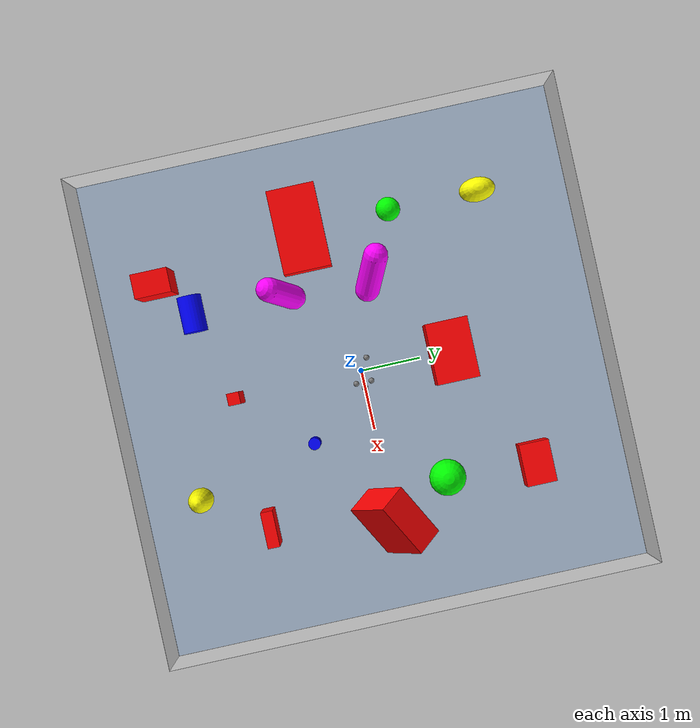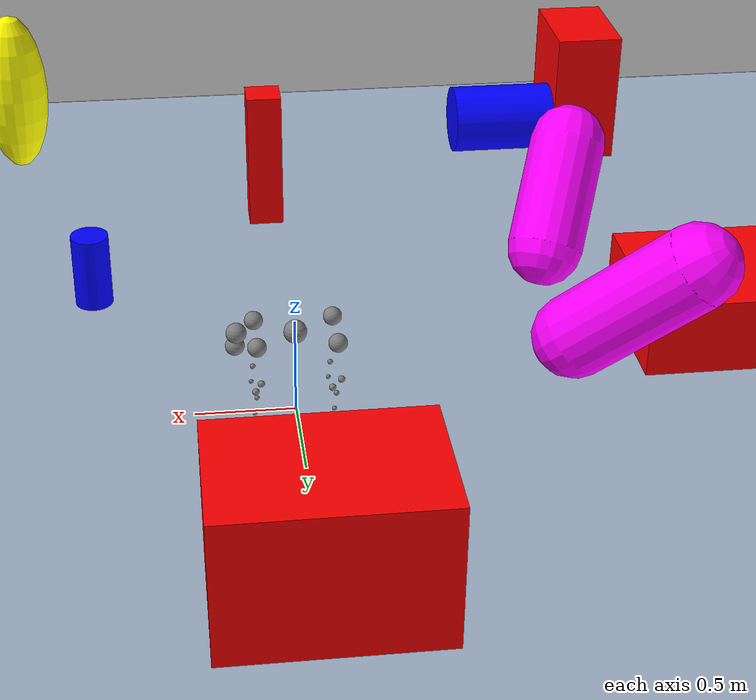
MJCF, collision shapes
<mujoco model="go2 feetonly flat terrain scene">
  <include file="unitree_go2/go2_mjx.xml"/>
  <statistic center="0 0 0.1" extent="0.8" meansize="0.04"/>

  <visual>
    <headlight diffuse="0.6 0.6 0.6" ambient="0.3 0.3 0.3" specular="0 0 0"/>
    <rgba haze="0.15 0.25 0.35 1"/>
    <global azimuth="120" elevation="-20"/>
    <map force="0.01"/>
    <scale forcewidth="0.3" contactwidth="0.5" contactheight="0.2"/>
    <quality shadowsize="8192"/>
  </visual>

  <asset>
    <texture type="skybox" builtin="gradient" rgb1="0.4314 0.5294 0.6431" rgb2="0 0 0" width="512" height="512"/>
    <texture type="2d" name="groundplane" builtin="checker" mark="edge" rgb1="0.4314 0.5294 0.6431" rgb2="0.8157 0.8549 0.9059"
      markrgb="0.8 0.8 0.8" width="300" height="300"/>
    <material name="groundplane" texture="groundplane" texuniform="true" texrepeat="1 1" reflectance="0.2"/>
  </asset>

  <worldbody>
      <light pos="0 0 1.5" dir="0 0 -1" directional="true"/>
      <geom name="floor" size="4 4 0.01" type="plane" material="groundplane" contype="1" conaffinity="0" priority="1" friction="0.6" condim="3"/>
      <geom name="wall1" type="box" size="1e-3 4 0.5" pos=" 4 0 0.5" rgba="0.9 0.9 0.9 1"/>
      <geom name="wall2" type="box" size="1e-3 4 0.5" pos="-4 0 0.5" rgba="0.9 0.9 0.9 1"/>
      <geom name="wall3" type="box" size="4 1e-3 0.5" pos="0  4 0.5" rgba="0.9 0.9 0.9 1"/>
      <geom name="wall4" type="box" size="4 1e-3 0.5" pos="0 -4 0.5" rgba="0.9 0.9 0.9 1"/>

      <!-- 盒子 -->
      <geom name="box1" type="box" size="0.25 0.5 0.5" pos="2.5 0 0.5" euler="45 -45 0" rgba="1 0 0 1"/>
      <geom name="box2" type="box" size="0.7 0.4 0.2" pos="-2.5 -0.5 0.2" rgba="1 0 0 1"/>
      <geom name="box3" type="box" size="0.3 0.1 0.3" pos="2.2 -2 0.3" rgba="1 0 0 1"/>
      <geom name="box4" type="box" size="0.1 0.1 0.4" pos="0 -2.1 0.4" rgba="1 0 0 1"/>
      <geom name="box5" type="box" size="0.2 0.3 0.4" pos="-2.1 -3 0.4" rgba="1 0 0 1"/>
      <geom name="box6" type="box" size="0.35 0.25 0.2" pos="2.1 2.5 0.2" rgba="1 0 0 1"/>
      <geom name="box7" type="box" size="0.5 0.35 0.35" pos="0 1.5 0.4" rgba="1 0 0 1"/>

      <!-- 球体 -->
      <geom name="sphere1" type="sphere" size="0.3" pos="2 1 0.5" rgba="0 1 0 1"/>
      <geom name="sphere2" type="sphere" size="0.2" pos="-2.5 1 0.3" rgba="0 1 0 1"/>

      <!-- 圆柱体 -->
      <geom name="cylinder1" type="cylinder" size="0.2 0.3" pos="-1.5 -2.5 0.4" quat="1 0 1 0" rgba="0 0 1 1"/>
      <geom name="cylinder2" type="cylinder" size="0.1 0.2" pos="1 -1 0.3" rgba="0 0 1 1"/>

      <!-- 椭球体 -->
      <geom name="ellipsoid1" type="ellipsoid" size="0.2 0.2 0.5" pos="1.5 -3 0.5" rgba="1 1 0 1"/>
      <geom name="ellipsoid2" type="ellipsoid" size="0.2 0.3 0.3" pos="-2.5 2.5 0.3" rgba="1 1 0 1"/>

      <!-- 胶囊体 -->
      <geom name="capsule1" type="capsule" size="0.2 0.35" pos="-1.5 0.5 0.8" quat="1 3 1 1" rgba="1 0 1 1"/>
      <geom name="capsule2" type="capsule" size="0.2 0.3" pos="-1.5 -1 0.6" quat="0.1 0 0.6 0.2" rgba="1 0 1 1"/>

  </worldbody>

  <keyframe>
    <key name="home"
      qpos="
      0 0 0.278
      1 0 0 0
      0.1 0.9 -1.8
      -0.1 0.9 -1.8
      0.1 0.9 -1.8
      -0.1 0.9 -1.8"
      ctrl="0.1 0.9 -1.8 -0.1 0.9 -1.8 0.1 0.9 -1.8 -0.1 0.9 -1.8"/>
  </keyframe>

</mujoco>

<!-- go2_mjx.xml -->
<mujoco model="go2">
  <compiler angle="radian" autolimits="true"/>

  <option iterations="1" ls_iterations="5" timestep="0.004" integrator="Euler">
    <flag eulerdamp="disable"/>
  </option>

  <custom>
    <numeric data="30" name="max_contact_points"/>
    <numeric data="12" name="max_geom_pairs"/>
  </custom>

  <default>
    <default class="go2">
      <geom condim="1"/>
      <joint axis="0 1 0" damping="2" armature="0.01"/>
      <general forcerange="-24 24" biastype="affine" gainprm="50 0 0" biasprm="0 -50 -0.5"/>

      <default class="abduction">
        <joint axis="1 0 0" range="-1.0472 1.0472"/>
        <general ctrlrange="-0.9472 0.9472"/>
      </default>
      <default class="hip">
        <joint range="-1.5708 3.4907"/>
        <general ctrlrange="-1.4 2.5"/>
      </default>
      <default class="knee">
        <joint range="-2.7227 -0.83776"/>
        <general ctrlrange="-2.6227 -0.84776"/>
      </default>
      <default class="visual">
        <geom type="mesh" contype="0" conaffinity="0" group="0"/>
      </default>
      <default class="go2foot">
        <site pos="0 0 -0.213" type="sphere" size="0.023" group="5"/>
        <geom rgba="0.231373 0.380392 0.705882 1"/>
      </default>
      <default class="collision">
        <geom group="3"/>
        <default class="foot">
          <geom type="sphere" size="0.0175" pos="-0.002 0 -0.213" solimp="0.9 .95 0.023" condim="3"/>
        </default>
      </default>
    </default>
  </default>

  <asset>
    <material name="metal" rgba=".9 .95 .95 1"/>
    <material name="black" rgba="0 0 0 1"/>
    <material name="white" rgba="1 1 1 1"/>
    <material name="gray" rgba="0.671705 0.692426 0.774270 1"/>

    <mesh file="assets/base_0.obj"/>
    <mesh file="assets/base_1.obj"/>
    <mesh file="assets/base_2.obj"/>
    <mesh file="assets/base_3.obj"/>
    <mesh file="assets/base_4.obj"/>
    <mesh file="assets/hip_0.obj"/>
    <mesh file="assets/hip_1.obj"/>
    <mesh file="assets/thigh_0.obj"/>
    <mesh file="assets/thigh_1.obj"/>
    <mesh file="assets/thigh_mirror_0.obj"/>
    <mesh file="assets/thigh_mirror_1.obj"/>
    <mesh file="assets/calf_0.obj"/>
    <mesh file="assets/calf_1.obj"/>
    <mesh file="assets/calf_mirror_0.obj"/>
    <mesh file="assets/calf_mirror_1.obj"/>
    <mesh file="assets/foot.obj"/>
  </asset>

  <worldbody>
    <body name="base" pos="0 0 0.445" childclass="go2">
      <camera name="track" pos="0.846 -1.465 0.916" xyaxes="0.866 0.500 0.000 -0.171 0.296 0.940" mode="trackcom"/>
      <camera name="head_camera" pos="0.32 0 0.04" xyaxes="0 -1 0 0 0 1"/>
      <inertial pos="0.021112 0 -0.005366" quat="-0.000543471 0.713435 -0.00173769 0.700719" mass="6.921"
        diaginertia="0.107027 0.0980771 0.0244531"/>
      <freejoint/>
      <geom mesh="base_0" material="black" class="visual"/>
      <geom mesh="base_1" material="black" class="visual"/>
      <geom mesh="base_2" material="black" class="visual"/>
      <geom mesh="base_3" material="white" class="visual"/>
      <geom mesh="base_4" material="gray" class="visual"/>
      <geom size="0.057 0.04675 0.057" class="collision"/>
      <geom size="0.05 0.045" pos="0.285 0 0.01" class="collision"/>
      <geom size="0.047" pos="0.293 0 -0.06" class="collision"/>
      <site name="imu" pos="-0.02557 0 0.04232"/>
      <site name="lidar" pos="0.295 0 -0.075" quat="0.05 0 1 0" rgba="1 0 0 1" size="0.005" group="5"/>
      <body name="FL_hip" pos="0.1934 0.0465 0">
        <inertial pos="-0.0054 0.00194 -0.000105" quat="0.497014 0.499245 0.505462 0.498237" mass="0.678"
          diaginertia="0.00088403 0.000596003 0.000479967"/>
        <joint name="FL_hip_joint" class="abduction"/>
        <geom mesh="hip_0" material="metal" class="visual"/>
        <geom mesh="hip_1" material="gray" class="visual"/>
        <geom name="fl_hip_0" size="0.046 0.02" pos="0 0.08 0" quat="1 1 0 0" class="collision"/>
        <body name="FL_thigh" pos="0 0.0955 0">
          <inertial pos="-0.00374 -0.0223 -0.0327" quat="0.829533 0.0847635 -0.0200632 0.551623" mass="1.152"
            diaginertia="0.00594973 0.00584149 0.000878787"/>
          <joint name="FL_thigh_joint" class="hip"/>
          <geom mesh="thigh_0" material="metal" class="visual"/>
          <geom mesh="thigh_1" material="gray" class="visual"/>
          <geom name="fl_thigh_0" size="0.017 0.01225 0.017" pos="-0.015 0 -0.1955" quat="0.707107 0 0.707107 0" class="collision"/>
          <body name="FL_calf" pos="0 0 -0.213">
            <inertial pos="0.00629595 -0.000622121 -0.141417" quat="0.710672 0.00154099 -0.00450087 0.703508"
              mass="0.241352" diaginertia="0.0014901 0.00146356 5.31397e-05"/>
            <joint name="FL_calf_joint" class="knee"/>
            <geom mesh="calf_0" material="gray" class="visual"/>
            <geom mesh="calf_1" material="black" class="visual"/>
            <geom name="fl_calf_0" size="0.012 0.06" pos="0.008 0 -0.06" quat="0.994493 0 -0.104807 0" class="collision"/>
            <geom name="fl_calf_1" size="0.011 0.0325" pos="0.02 0 -0.148" quat="0.999688 0 0.0249974 0" class="collision"/>
            <geom pos="0 0 -0.213" mesh="foot" class="visual" material="black"/>
            <geom name="FL" class="foot"/>
            <site name="FL" class="go2foot"/>
          </body>
        </body>
      </body>
      <body name="FR_hip" pos="0.1934 -0.0465 0">
        <inertial pos="-0.0054 -0.00194 -0.000105" quat="0.498237 0.505462 0.499245 0.497014" mass="0.678"
          diaginertia="0.00088403 0.000596003 0.000479967"/>
        <joint name="FR_hip_joint" class="abduction"/>
        <geom mesh="hip_0" material="metal" class="visual" quat="4.63268e-05 1 0 0"/>
        <geom mesh="hip_1" material="gray" class="visual" quat="4.63268e-05 1 0 0"/>
        <geom name="fr_hip_0" size="0.046 0.02" pos="0 -0.08 0" quat="0.707107 0.707107 0 0" class="collision"/>
        <body name="FR_thigh" pos="0 -0.0955 0">
          <inertial pos="-0.00374 0.0223 -0.0327" quat="0.551623 -0.0200632 0.0847635 0.829533" mass="1.152"
            diaginertia="0.00594973 0.00584149 0.000878787"/>
          <joint name="FR_thigh_joint" class="hip"/>
          <geom mesh="thigh_mirror_0" material="metal" class="visual"/>
          <geom mesh="thigh_mirror_1" material="gray" class="visual"/>
          <geom name="fr_thigh_0" size="0.017 0.01225 0.017" pos="-0.015 0 -0.1955" quat="0.707107 0 0.707107 0" class="collision"/>
          <body name="FR_calf" pos="0 0 -0.213">
            <inertial pos="0.00629595 0.000622121 -0.141417" quat="0.703508 -0.00450087 0.00154099 0.710672"
              mass="0.241352" diaginertia="0.0014901 0.00146356 5.31397e-05"/>
            <joint name="FR_calf_joint" class="knee"/>
            <geom mesh="calf_mirror_0" material="gray" class="visual"/>
            <geom mesh="calf_mirror_1" material="black" class="visual"/>
            <geom name="fr_calf_0" size="0.013 0.06" pos="0.01 0 -0.06" quat="0.995004 0 -0.0998334 0" class="collision"/>
            <geom name="fr_calf_1" size="0.011 0.0325" pos="0.02 0 -0.148" quat="0.999688 0 0.0249974 0" class="collision"/>
            <geom pos="0 0 -0.213" mesh="foot" class="visual" material="black"/>
            <geom name="FR" class="foot"/>
            <site name="FR" class="go2foot"/>
          </body>
        </body>
      </body>
      <body name="RL_hip" pos="-0.1934 0.0465 0">
        <inertial pos="0.0054 0.00194 -0.000105" quat="0.505462 0.498237 0.497014 0.499245" mass="0.678"
          diaginertia="0.00088403 0.000596003 0.000479967"/>
        <joint name="RL_hip_joint" class="abduction"/>
        <geom mesh="hip_0" material="metal" class="visual" quat="4.63268e-05 0 1 0"/>
        <geom mesh="hip_1" material="gray" class="visual" quat="4.63268e-05 0 1 0"/>
        <geom name="rl_hip_0" size="0.046 0.02" pos="0 0.08 0" quat="0.707107 0.707107 0 0" class="collision"/>
        <body name="RL_thigh" pos="0 0.0955 0">
          <inertial pos="-0.00374 -0.0223 -0.0327" quat="0.829533 0.0847635 -0.0200632 0.551623" mass="1.152"
            diaginertia="0.00594973 0.00584149 0.000878787"/>
          <joint name="RL_thigh_joint" class="hip"/>
          <geom mesh="thigh_0" material="metal" class="visual"/>
          <geom mesh="thigh_1" material="gray" class="visual"/>
          <geom name="rl_thigh_0" size="0.017 0.01225 0.017" pos="-0.015 0 -0.1955" quat="0.707107 0 0.707107 0" class="collision"/>
          <body name="RL_calf" pos="0 0 -0.213">
            <inertial pos="0.00629595 -0.000622121 -0.141417" quat="0.710672 0.00154099 -0.00450087 0.703508"
              mass="0.241352" diaginertia="0.0014901 0.00146356 5.31397e-05"/>
            <joint name="RL_calf_joint" class="knee"/>
            <geom mesh="calf_0" material="gray" class="visual"/>
            <geom mesh="calf_1" material="black" class="visual"/>
            <geom name="rl_calf_0" size="0.013 0.06" pos="0.01 0 -0.06" quat="0.995004 0 -0.0998334 0" class="collision"/>
            <geom name="rl_calf_1" size="0.011 0.0325" pos="0.02 0 -0.148" quat="0.999688 0 0.0249974 0" class="collision"/>
            <geom pos="0 0 -0.213" mesh="foot" class="visual" material="black"/>
            <geom name="RL" class="foot"/>
            <site name="RL" class="go2foot"/>
          </body>
        </body>
      </body>
      <body name="RR_hip" pos="-0.1934 -0.0465 0">
        <inertial pos="0.0054 -0.00194 -0.000105" quat="0.499245 0.497014 0.498237 0.505462" mass="0.678"
          diaginertia="0.00088403 0.000596003 0.000479967"/>
        <joint name="RR_hip_joint" class="abduction"/>
        <geom mesh="hip_0" material="metal" class="visual" quat="2.14617e-09 4.63268e-05 4.63268e-05 -1"/>
        <geom mesh="hip_1" material="gray" class="visual" quat="2.14617e-09 4.63268e-05 4.63268e-05 -1"/>
        <geom name="rr_hip_0" size="0.046 0.02" pos="0 -0.08 0" quat="0.707107 0.707107 0 0" class="collision"/>
        <body name="RR_thigh" pos="0 -0.0955 0">
          <inertial pos="-0.00374 0.0223 -0.0327" quat="0.551623 -0.0200632 0.0847635 0.829533" mass="1.152"
            diaginertia="0.00594973 0.00584149 0.000878787"/>
          <joint name="RR_thigh_joint" class="hip"/>
          <geom mesh="thigh_mirror_0" material="metal" class="visual"/>
          <geom mesh="thigh_mirror_1" material="gray" class="visual"/>
          <geom name="rr_thigh_0" size="0.017 0.01225 0.017" pos="-0.015 0 -0.1955" quat="0.707107 0 0.707107 0" class="collision"/>
          <body name="RR_calf" pos="0 0 -0.213">
            <inertial pos="0.00629595 0.000622121 -0.141417" quat="0.703508 -0.00450087 0.00154099 0.710672"
              mass="0.241352" diaginertia="0.0014901 0.00146356 5.31397e-05"/>
            <joint name="RR_calf_joint" class="knee"/>
            <geom mesh="calf_mirror_0" material="gray" class="visual"/>
            <geom mesh="calf_mirror_1" material="black" class="visual"/>
            <geom name="rr_calf_0" size="0.013 0.06" pos="0.01 0 -0.06" quat="0.995004 0 -0.0998334 0" class="collision"/>
            <geom name="rr_calf_1" size="0.011 0.0325" pos="0.02 0 -0.148" quat="0.999688 0 0.0249974 0" class="collision"/>
            <geom pos="0 0 -0.213" mesh="foot" class="visual" material="black"/>
            <geom name="RR" class="foot"/>
            <site name="RR" class="go2foot"/>
          </body>
        </body>
      </body>
    </body>
  </worldbody>

  <actuator>
    <general class="abduction" name="FL_hip" joint="FL_hip_joint"/>
    <general class="hip" name="FL_thigh" joint="FL_thigh_joint"/>
    <general class="knee" name="FL_calf" joint="FL_calf_joint"/>
    <general class="abduction" name="FR_hip" joint="FR_hip_joint"/>
    <general class="hip" name="FR_thigh" joint="FR_thigh_joint"/>
    <general class="knee" name="FR_calf" joint="FR_calf_joint"/>
    <general class="abduction" name="RL_hip" joint="RL_hip_joint"/>
    <general class="hip" name="RL_thigh" joint="RL_thigh_joint"/>
    <general class="knee" name="RL_calf" joint="RL_calf_joint"/>
    <general class="abduction" name="RR_hip" joint="RR_hip_joint"/>
    <general class="hip" name="RR_thigh" joint="RR_thigh_joint"/>
    <general class="knee" name="RR_calf" joint="RR_calf_joint"/>
  </actuator>

  <sensor>
    <jointpos joint="FL_hip_joint" name="abduction_front_left_pos"/>
    <jointpos joint="FL_thigh_joint" name="hip_front_left_pos"/>
    <jointpos joint="FL_calf_joint" name="knee_front_left_pos"/>
    <jointpos joint="RL_hip_joint" name="abduction_hind_left_pos"/>
    <jointpos joint="RL_thigh_joint" name="hip_hind_left_pos"/>
    <jointpos joint="RL_calf_joint" name="knee_hind_left_pos"/>
    <jointpos joint="FR_hip_joint" name="abduction_front_right_pos"/>
    <jointpos joint="FR_thigh_joint" name="hip_front_right_pos"/>
    <jointpos joint="FR_calf_joint" name="knee_front_right_pos"/>
    <jointpos joint="RR_hip_joint" name="abduction_hind_right_pos"/>
    <jointpos joint="RR_thigh_joint" name="hip_hind_right_pos"/>
    <jointpos joint="RR_calf_joint" name="knee_hind_right_pos"/>
    <jointvel joint="FL_hip_joint" name="abduction_front_left_vel"/>
    <jointvel joint="FL_thigh_joint" name="hip_front_left_vel"/>
    <jointvel joint="FL_calf_joint" name="knee_front_left_vel"/>
    <jointvel joint="RL_hip_joint" name="abduction_hind_left_vel"/>
    <jointvel joint="RL_thigh_joint" name="hip_hind_left_vel"/>
    <jointvel joint="RL_calf_joint" name="knee_hind_left_vel"/>
    <jointvel joint="FR_hip_joint" name="abduction_front_right_vel"/>
    <jointvel joint="FR_thigh_joint" name="hip_front_right_vel"/>
    <jointvel joint="FR_calf_joint" name="knee_front_right_vel"/>
    <jointvel joint="RR_hip_joint" name="abduction_hind_right_vel"/>
    <jointvel joint="RR_thigh_joint" name="hip_hind_right_vel"/>
    <jointvel joint="RR_calf_joint" name="knee_hind_right_vel"/>

    <gyro site="imu" name="gyro"/>
    <accelerometer site="imu" name="accelerometer"/>
    <velocimeter site="imu" name="local_linvel"/>
    <framezaxis objtype="site" objname="imu" name="upvector"/>
    <framequat objtype="site" objname="imu" name="orientation"/>
    <framepos objtype="site" objname="imu" name="global_position"/>
    <framelinvel objtype="site" objname="imu" name="global_linvel"/>
    <frameangvel objtype="site" objname="imu" name="global_angvel"/>

    <framelinvel objtype="site" objname="FR" name="FR_global_linvel"/>
    <framelinvel objtype="site" objname="FL" name="FL_global_linvel"/>
    <framelinvel objtype="site" objname="RR" name="RR_global_linvel"/>
    <framelinvel objtype="site" objname="RL" name="RL_global_linvel"/>

    <framepos objtype="site" objname="FR" name="FR_pos" reftype="site" refname="imu"/>
    <framepos objtype="site" objname="FL" name="FL_pos" reftype="site" refname="imu"/>
    <framepos objtype="site" objname="RR" name="RR_pos" reftype="site" refname="imu"/>
    <framepos objtype="site" objname="RL" name="RL_pos" reftype="site" refname="imu"/>
  </sensor>
</mujoco>
